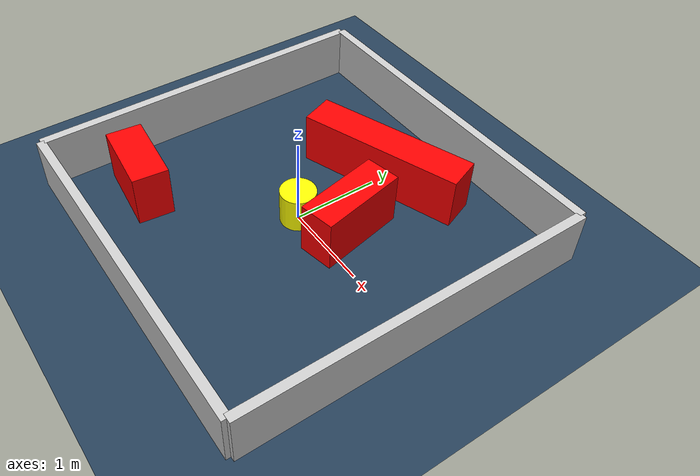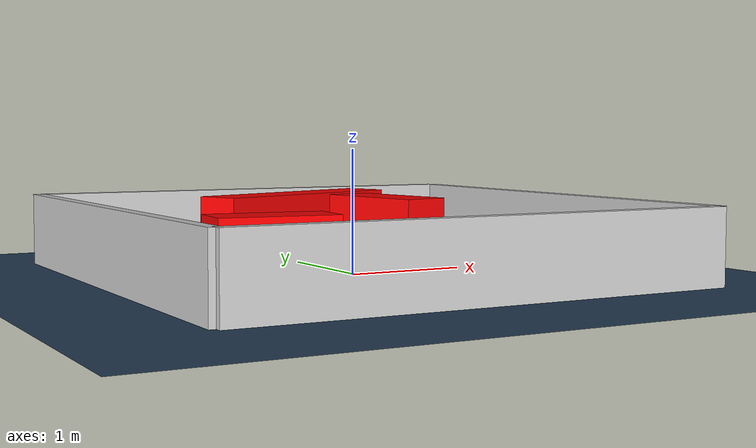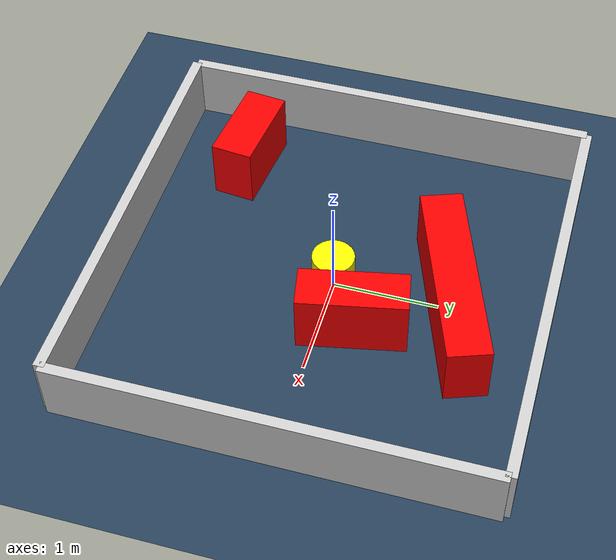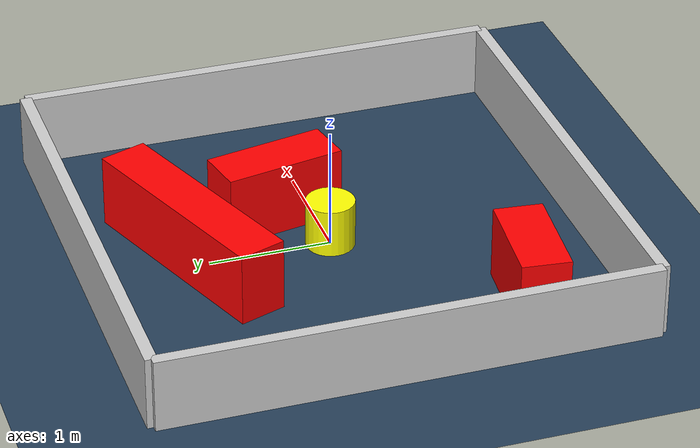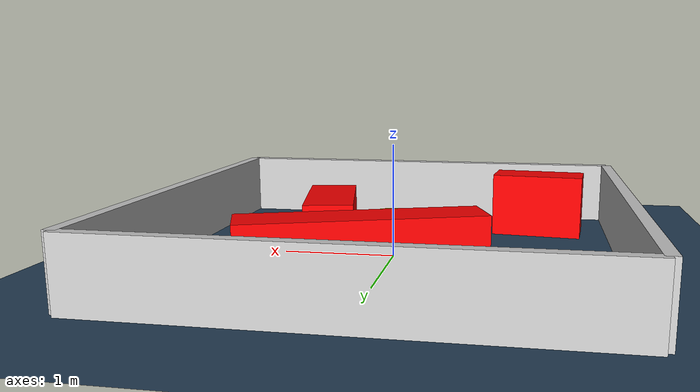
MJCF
<?xml version="1.0" ?>
<mujoco model="generated_environment">
  <option timestep="0.01" integrator="RK4" cone="elliptic"/>
  <default>
    <geom density="1"/>
  </default>
  <asset>
    <texture builtin="gradient" height="3072" rgb1="0.3 0.5 0.7" rgb2="0 0 0" type="skybox" width="512"/>
    <texture builtin="checker" height="300" mark="edge" markrgb="0.8 0.8 0.8" name="groundplane" rgb1="0.2 0.3 0.4" rgb2="0.1 0.2 0.3" type="2d" width="300"/>
    <material name="groundplane" reflectance="0.2" texrepeat="5 5" texture="groundplane" texuniform="true"/>
    <material name="robot" rgba="0.0 1.0 0.0 1"/>
  </asset>
  <worldbody>
    <light dir="0 0 -1" directional="true" pos="0 0 1.5"/>
    <geom condim="4" friction="1.0 0.005 0.001" material="groundplane" name="floor" size="0 0 0.05" type="plane"/>
    <body name="walls">
      <geom name="wall_1" condim="4" pos="-2.0 0.0 0.3" rgba="0.800000011920929 0.800000011920929 0.800000011920929 1.0" size="0.05 2.0 0.3" type="box"/>
      <geom name="wall_2" condim="4" pos="2.0 0.0 0.3" rgba="0.800000011920929 0.800000011920929 0.800000011920929 1.0" size="0.05 2.0 0.3" type="box"/>
      <geom name="wall_3" condim="4" pos="0.0 -2.0 0.3" rgba="0.800000011920929 0.800000011920929 0.800000011920929 1.0" size="2.0 0.05 0.3" type="box"/>
      <geom name="wall_4" condim="4" pos="0.0 2.0 0.3" rgba="0.800000011920929 0.800000011920929 0.800000011920929 1.0" size="2.0 0.05 0.3" type="box"/>
    </body>
    <body name="robot">
      <joint name="joint_x" type="slide" pos="0 0 0" axis="1 0 0"/>
      <joint name="joint_y" type="slide" pos="0 0 0" axis="0 1 0"/>
      <geom name="robot" type="sphere" pos="0.3 0.0 0.2" size="0.05" mass="5." friction="1.0 0.005 0.0001" condim="4" rgba="0.5 0.5 0.5 1.0"/>
      <site name="sensor_ball"/>
    </body>
    <body name="obstacle_movable_1">
      <geom name="obstacle_movable_1" condim="4" pos="0.0 0.0 0.2" euler="0 0 0.0" friction="1.0 0.005 0.001" rgba="1.0 1.0 0.0 1.0" size="0.2 0.2 0.0" type="cylinder" mass="0.1"/>
      <joint type="free"/>
    </body>
    <body name="obstacle_2_static">
      <geom name="obstacle_2_static" condim="4" pos="0.043749798803887296 1.131585424204039 0.3" euler="0 0 20.029844156551498" friction="1.0 0.005 0.001" rgba="1 0 0 1" size="0.937439069523688 0.2 0.3" type="box"/>
    </body>
    <body name="obstacle_3_static">
      <geom name="obstacle_3_static" condim="4" pos="-1.2743234114272128 -1.2142332731025665 0.3" euler="0 0 354.0639416024058" friction="1.0 0.005 0.001" rgba="1 0 0 1" size="0.43024541127554183 0.2 0.3" type="box"/>
    </body>
    <body name="obstacle_4_static">
      <geom name="obstacle_4_static" condim="4" pos="0.4836098754579268 0.3129302187202698 0.3" euler="0 0 101.39716278723381" friction="1.0 0.005 0.001" rgba="1 0 0 1" size="0.5029062696147741 0.2 0.3" type="box"/>
    </body>
  </worldbody>
  <actuator>
    <motor name="actuator_x" joint="joint_x" gear="1" ctrlrange="-1 1"/>
    <motor name="actuator_y" joint="joint_y" gear="1" ctrlrange="-1 1"/>
  </actuator>
</mujoco>
